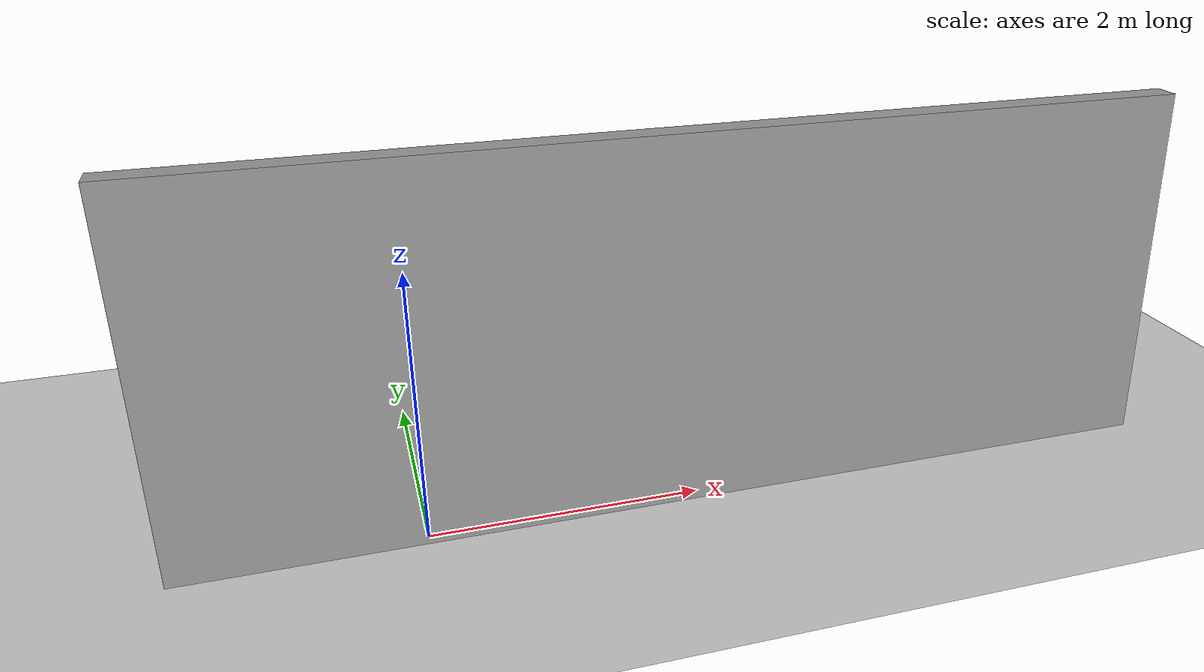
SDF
<?xml version="1.0" ?>

<sdf version="1.5">
	<world name="default">
		<!-- A global light source -->
		<include>
			<uri>model://sun</uri>
		</include>

		<!-- A ground plane -->
		<include>
			<uri>model://ground_plane</uri>
		</include>
		<!-- My models-->
		<include>
			<uri>model://grey_wall</uri>
			<static>true</static>
			<pose>2 0 0 0 0 0</pose>
		</include>
	</world>
</sdf>

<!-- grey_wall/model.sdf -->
<sdf version="1.5">
  <model name="grey_wall">
    <static>true</static>
    <link name="link">
      <pose>0 0 1.4 0 0 0</pose>
      <collision name="collision">
        <geometry>
          <box>
            <size>7.5 0.2 2.8</size>
          </box>
        </geometry>
      </collision>
      <visual name="visual">
        <cast_shadows>false</cast_shadows>
        <geometry>
          <box>
            <size>7.5 0.2 2.8</size>
          </box>
        </geometry>
        <material>
          <script>
            <uri>model://../model_source/models/grey_wall/materials/scripts</uri>
            <uri>model://../model_source/models/grey_wall/materials/textures</uri>
            <name>vrc/grey_wall</name>
          </script>
        </material>
      </visual>
    </link>
  </model>
</sdf>
